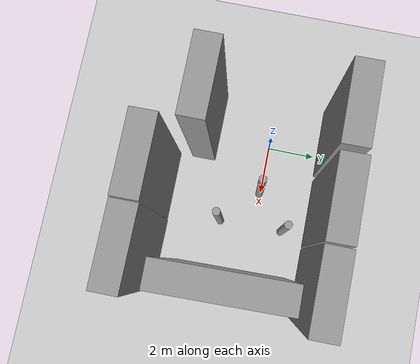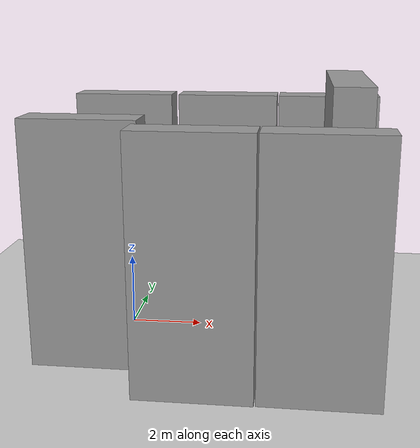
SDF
<sdf version="1.7">
 <world name="default">
  <model name="ground_plane">
   <static>1</static>
   <link name="link">
    <collision name="collision">
     <geometry><plane><normal>0 0 1</normal><size>100 100</size></plane></geometry>
     <surface>
      <contact><collide_bitmask>65535</collide_bitmask></contact>
      <friction><ode><mu>100</mu><mu2>50</mu2></ode></friction>
     </surface>
    </collision>
    <visual name="visual">
     <cast_shadows>0</cast_shadows>
     <geometry><plane><normal>0 0 1</normal><size>100 100</size></plane></geometry>
     <material>
      <script><uri>file://media/materials/scripts/gazebo.material</uri><name>Gazebo/Grey</name></script>
     </material>
    </visual>
   </link>
  </model>
  <gravity>0 0 -9.8</gravity>
  <magnetic_field>6e-06 2.3e-05 -4.2e-05</magnetic_field>
  <atmosphere type="adiabatic"/>
  <physics type="ode">
   <max_step_size>0.001</max_step_size>
   <real_time_factor>1</real_time_factor>
   <real_time_update_rate>1000</real_time_update_rate>
  </physics>
  <scene><ambient>0.4 0.4 0.4 1</ambient><background>0.7 0.7 0.7 1</background><shadows>1</shadows></scene>
  <spherical_coordinates>
   <surface_model>EARTH_WGS84</surface_model>
   <latitude_deg>0</latitude_deg>
   <longitude_deg>0</longitude_deg>
   <elevation>0</elevation>
   <heading_deg>0</heading_deg>
  </spherical_coordinates>
  <model name="unit_box_clone">
   <pose>2.55632 2.67688 3.24502 0 1e-06 0.006878</pose>
   <link name="link">
    <inertial>
     <mass>1</mass>
     <inertia>
      <ixx>0.166667</ixx>
      <ixy>0</ixy>
      <ixz>0</ixz>
      <iyy>0.166667</iyy>
      <iyz>0</iyz>
      <izz>0.166667</izz>
     </inertia>
    </inertial>
    <collision name="collision"><geometry><box><size>2.97291 1 6.49004</size></box></geometry></collision>
    <visual name="visual">
     <geometry><box><size>2.97291 1 6.49004</size></box></geometry>
     <material>
      <script><name>Gazebo/Grey</name><uri>file://media/materials/scripts/gazebo.material</uri></script>
     </material>
    </visual>
   </link>
  </model>
  <model name="unit_box_clone_clone">
   <pose>5.59435 2.67927 3.24502 0 -1e-06 -0.000344</pose>
   <link name="link">
    <inertial>
     <mass>1</mass>
     <inertia>
      <ixx>0.166667</ixx>
      <ixy>0</ixy>
      <ixz>0</ixz>
      <iyy>0.166667</iyy>
      <iyz>0</iyz>
      <izz>0.166667</izz>
     </inertia>
    </inertial>
    <collision name="collision"><geometry><box><size>2.97291 1 6.49004</size></box></geometry></collision>
    <visual name="visual">
     <geometry><box><size>2.97291 1 6.49004</size></box></geometry>
     <material>
      <script><name>Gazebo/Grey</name><uri>file://media/materials/scripts/gazebo.material</uri></script>
     </material>
    </visual>
   </link>
  </model>
  <model name="unit_box_clone_clone_0">
   <pose>-0.523138 -2.75267 3.24502 -0 -1e-06 -0.001003</pose>
   <link name="link">
    <inertial>
     <mass>1</mass>
     <inertia>
      <ixx>0.166667</ixx>
      <ixy>0</ixy>
      <ixz>0</ixz>
      <iyy>0.166667</iyy>
      <iyz>0</iyz>
      <izz>0.166667</izz>
     </inertia>
    </inertial>
    <collision name="collision"><geometry><box><size>2.97291 1 6.49004</size></box></geometry></collision>
    <visual name="visual">
     <geometry><box><size>2.97291 1 6.49004</size></box></geometry>
     <material>
      <script><name>Gazebo/Grey</name><uri>file://media/materials/scripts/gazebo.material</uri></script>
     </material>
    </visual>
   </link>
  </model>
  <model name="unit_box_clone_clone_0_clone">
   <pose>2.44504 -4.2884 3.24502 0 -1e-06 0.001618</pose>
   <link name="link">
    <inertial>
     <mass>1</mass>
     <inertia>
      <ixx>0.166667</ixx>
      <ixy>0</ixy>
      <ixz>0</ixz>
      <iyy>0.166667</iyy>
      <iyz>0</iyz>
      <izz>0.166667</izz>
     </inertia>
    </inertial>
    <collision name="collision"><geometry><box><size>2.97291 1 6.49004</size></box></geometry></collision>
    <visual name="visual">
     <geometry><box><size>2.97291 1 6.49004</size></box></geometry>
     <material>
      <script><name>Gazebo/Grey</name><uri>file://media/materials/scripts/gazebo.material</uri></script>
     </material>
    </visual>
   </link>
  </model>
  <model name="unit_box_clone_clone_0_clone_0">
   <pose>5.46196 -4.26955 3.24502 0 -1e-06 -0.003637</pose>
   <link name="link">
    <inertial>
     <mass>1</mass>
     <inertia>
      <ixx>0.166667</ixx>
      <ixy>0</ixy>
      <ixz>0</ixz>
      <iyy>0.166667</iyy>
      <iyz>0</iyz>
      <izz>0.166667</izz>
     </inertia>
    </inertial>
    <collision name="collision"><geometry><box><size>2.97291 1 6.49004</size></box></geometry></collision>
    <visual name="visual">
     <geometry><box><size>2.97291 1 6.49004</size></box></geometry>
     <material>
      <script><name>Gazebo/Grey</name><uri>file://media/materials/scripts/gazebo.material</uri></script>
     </material>
    </visual>
   </link>
  </model>
  <model name="unit_cylinder_clone">
   <pose>3.56273 -1.49017 2.03419 0 0 -0.017655</pose>
   <link name="link">
    <inertial>
     <mass>1</mass>
     <inertia><ixx>0.145833</ixx><ixy>0</ixy><ixz>0</ixz><iyy>0.145833</iyy><iyz>0</iyz><izz>0.125</izz></inertia>
    </inertial>
    <collision name="collision">
     <geometry><cylinder><radius>0.15453</radius><length>4.06839</length></cylinder></geometry>
    </collision>
    <visual name="visual">
     <geometry><cylinder><radius>0.15453</radius><length>4.06839</length></cylinder></geometry>
     <material>
      <script><name>Gazebo/Grey</name><uri>file://media/materials/scripts/gazebo.material</uri></script>
     </material>
    </visual>
   </link>
  </model>
  <model name="unit_cylinder_clone_0">
   <pose>3.54532 1.16276 2.03419 0 0 -0.016996</pose>
   <link name="link">
    <inertial>
     <mass>1</mass>
     <inertia><ixx>0.145833</ixx><ixy>0</ixy><ixz>0</ixz><iyy>0.145833</iyy><iyz>0</iyz><izz>0.125</izz></inertia>
    </inertial>
    <collision name="collision">
     <geometry><cylinder><radius>0.15453</radius><length>4.06839</length></cylinder></geometry>
    </collision>
    <visual name="visual">
     <geometry><cylinder><radius>0.15453</radius><length>4.06839</length></cylinder></geometry>
     <material>
      <script><name>Gazebo/Grey</name><uri>file://media/materials/scripts/gazebo.material</uri></script>
     </material>
    </visual>
   </link>
  </model>
  <model name="unit_box_0">
   <pose>6.00915 -0.677461 3.65083 0 0.000553 0.018044</pose>
   <link name="link">
    <inertial>
     <mass>1</mass>
     <inertia>
      <ixx>0.166667</ixx>
      <ixy>0</ixy>
      <ixz>0</ixz>
      <iyy>0.166667</iyy>
      <iyz>0</iyz>
      <izz>0.166667</izz>
     </inertia>
    </inertial>
    <collision name="collision"><geometry><box><size>1 4.71151 7.30114</size></box></geometry></collision>
    <visual name="visual">
     <geometry><box><size>1 4.71151 7.30114</size></box></geometry>
     <material>
      <script><name>Gazebo/Grey</name><uri>file://media/materials/scripts/gazebo.material</uri></script>
     </material>
    </visual>
   </link>
  </model>
  <model name="unit_box_clone_clone_1">
   <pose>-0.627357 2.6349 3.24502 0 -1e-06 0.007709</pose>
   <link name="link">
    <inertial>
     <mass>1</mass>
     <inertia>
      <ixx>0.166667</ixx>
      <ixy>0</ixy>
      <ixz>0</ixz>
      <iyy>0.166667</iyy>
      <iyz>0</iyz>
      <izz>0.166667</izz>
     </inertia>
    </inertial>
    <collision name="collision"><geometry><box><size>2.97291 1 6.49004</size></box></geometry></collision>
    <visual name="visual">
     <geometry><box><size>2.97291 1 6.49004</size></box></geometry>
     <material>
      <script><name>Gazebo/Grey</name><uri>file://media/materials/scripts/gazebo.material</uri></script>
     </material>
    </visual>
   </link>
  </model>
  <light name="user_directional_light_0" type="directional">
   <pose>-4.64306 0.087706 1 0 -0 0</pose>
   <diffuse>0.5 0.5 0.5 1</diffuse>
   <specular>0.1 0.1 0.1 1</specular>
   <direction>0.1 0.1 -0.9</direction>
   <attenuation>
    <range>20</range>
    <constant>0.5</constant>
    <linear>0.01</linear>
    <quadratic>0.001</quadratic>
   </attenuation>
   <spot><inner_angle>0</inner_angle><outer_angle>0</outer_angle><falloff>0</falloff></spot>
  </light>
  <model name="unit_cylinder_clone_clone">
   <pose>2.08197 -0.050305 2.03419 0 0 -0.017476</pose>
   <link name="link">
    <inertial>
     <mass>1</mass>
     <inertia><ixx>0.145833</ixx><ixy>0</ixy><ixz>0</ixz><iyy>0.145833</iyy><iyz>0</iyz><izz>0.125</izz></inertia>
    </inertial>
    <collision name="collision">
     <geometry><cylinder><radius>0.15453</radius><length>4.06839</length></cylinder></geometry>
    </collision>
    <visual name="visual">
     <geometry><cylinder><radius>0.15453</radius><length>4.06839</length></cylinder></geometry>
     <material>
      <script><name>Gazebo/Grey</name><uri>file://media/materials/scripts/gazebo.material</uri></script>
     </material>
    </visual>
   </link>
  </model>
 </world>
</sdf>
